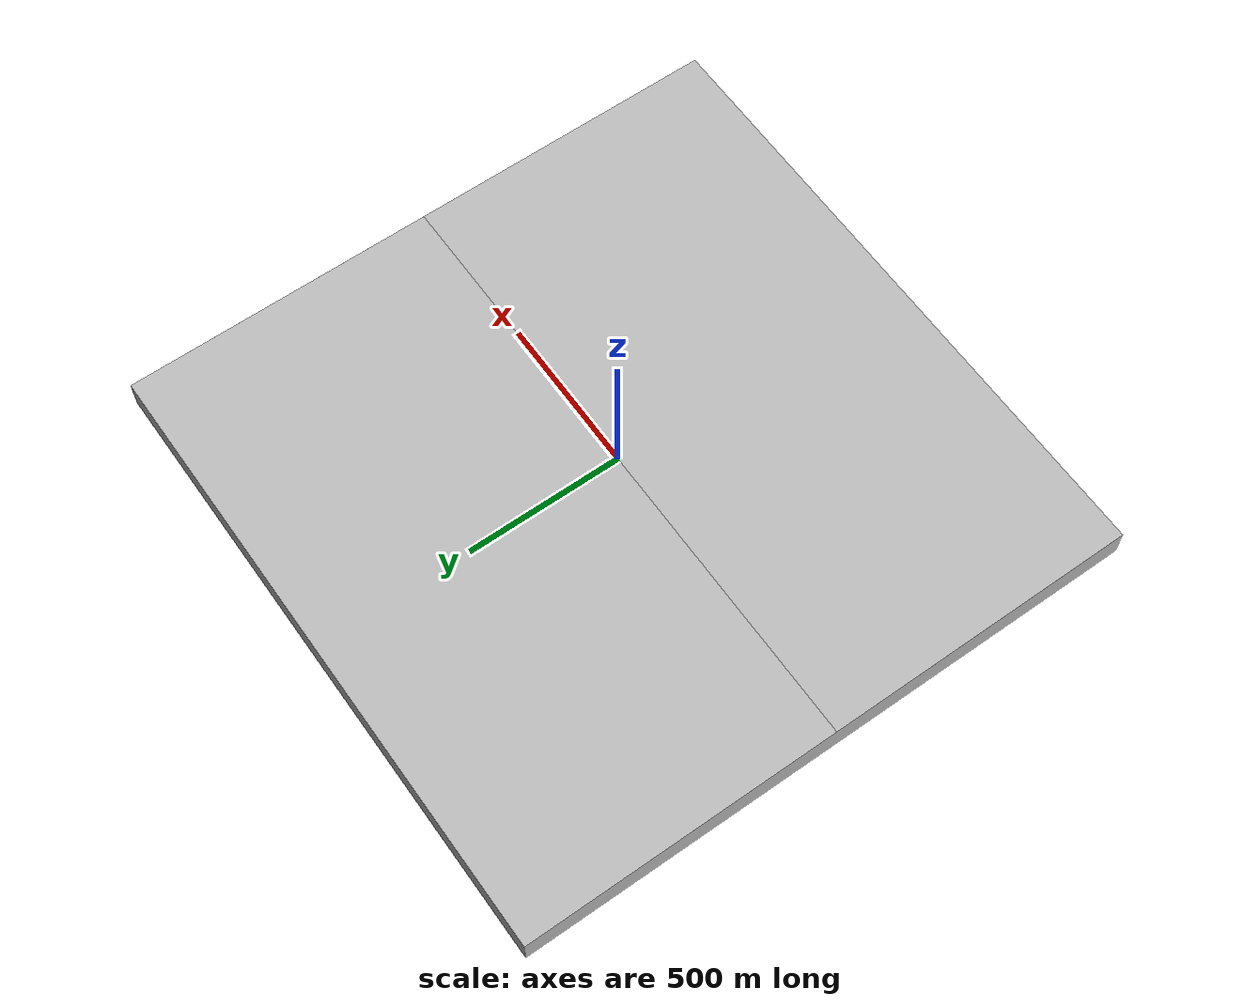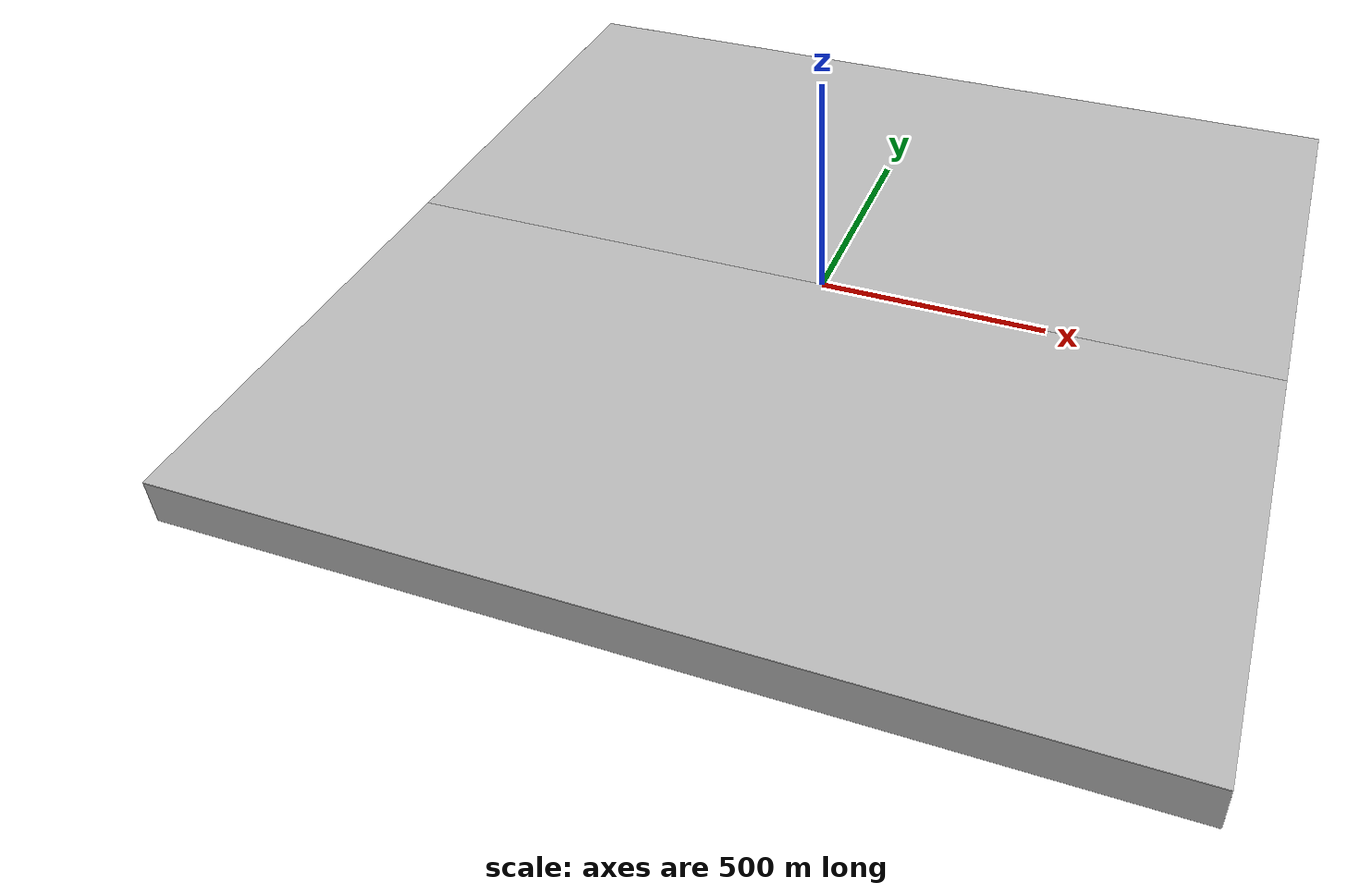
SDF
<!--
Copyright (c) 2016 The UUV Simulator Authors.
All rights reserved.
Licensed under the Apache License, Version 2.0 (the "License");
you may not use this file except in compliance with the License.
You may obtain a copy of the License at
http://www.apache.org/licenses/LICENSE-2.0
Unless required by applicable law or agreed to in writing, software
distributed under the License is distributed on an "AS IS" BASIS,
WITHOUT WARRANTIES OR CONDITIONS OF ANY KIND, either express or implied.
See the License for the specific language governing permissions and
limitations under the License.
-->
<?xml version="1.0" ?>
<sdf version="1.4">
  <world name="oceans_waves">
    <physics name="default_physics" default="true" type="ode">
      <max_step_size>0.002</max_step_size>
      <real_time_factor>1</real_time_factor>
      <real_time_update_rate>500</real_time_update_rate>
    </physics>
    <scene>
      <ambient>0.01 0.01 0.01 1.0</ambient>
      <sky>
        <clouds>
          <speed>12</speed>
        </clouds>
      </sky>
      <shadows>1</shadows>
    </scene>

    <!-- Origin placed somewhere in the middle of the North Sea  -->
    <spherical_coordinates>
      <latitude_deg>56.71897669633431</latitude_deg>
      <longitude_deg>3.515625</longitude_deg>
    </spherical_coordinates>

    <!-- Global light source -->
    <light type="directional" name="sun1">
      <pose>50 0 150 0 0 0</pose>
      <diffuse>1 1 1 1</diffuse>
      <specular>.1 .1 .1 1</specular>
      <direction>0.3 0.3 -1</direction>
      <cast_shadows>false</cast_shadows>
    </light>

    <!-- Global light source -->
    <light type="directional" name="sun_diffuse">
      <pose>-50 0 -150 0 0 0</pose>
      <diffuse>0.6 0.6 0.6 1</diffuse>
      <specular>0 0 0 1</specular>
      <direction>-0.3 -0.3 -1</direction>
      <cast_shadows>false</cast_shadows>
    </light>

    <!-- Virtual NED frame -->
    <include>
      <uri>model://ned_frame</uri>
      <pose>0 0 0 0 0 0</pose>
    </include>

    <!-- Bounding box with sea surface -->
    <include>
      <uri>model://ocean</uri>
      <pose>0 0 0 0 0 0</pose>
    </include>

    <!-- Heightmap -->
    <include>
      <uri>model://sand_heightmap</uri>
      <pose>0 0 -95 0 0 0</pose>
    </include>

    <plugin name="underwater_current_plugin" filename="libuuv_underwater_current_ros_plugin.so">
      <namespace>hydrodynamics</namespace>
      <constant_current>
        <topic>current_velocity</topic>
        <velocity>
          <mean>0</mean>
          <min>0</min>
          <max>5</max>
          <mu>0.0</mu>
          <noiseAmp>0.0</noiseAmp>
        </velocity>

        <horizontal_angle>
          <mean>0</mean>
          <min>-3.141592653589793238</min>
          <max>3.141592653589793238</max>
          <mu>0.0</mu>
          <noiseAmp>0.0</noiseAmp>
        </horizontal_angle>

        <vertical_angle>
          <mean>0</mean>
          <min>-3.141592653589793238</min>
          <max>3.141592653589793238</max>
          <mu>0.0</mu>
          <noiseAmp>0.0</noiseAmp>
        </vertical_angle>
      </constant_current>
    </plugin>

    <plugin name="sc_interface" filename="libuuv_sc_ros_interface_plugin.so"/>

    <gui fullscreen='0'>
      <camera name='user_camera'>
        <pose frame=''>34.6042 32.2383 -20.6633 0 0.528384 1.41245</pose>
        <view_controller>orbit</view_controller>
        <projection_type>perspective</projection_type>
      </camera>
    </gui>
  </world>
</sdf>

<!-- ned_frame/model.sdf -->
<sdf version='1.5'>
    <model name="world_aaa">

      <pose>0 0 0 0 0 0</pose>
      <static>true</static>

      <link name="world_aaa">
        <gravity>0</gravity>
        <pose>0 0 0 3.14159265359 0 1.5707963267948966</pose>

        <visual name="N_visual">
          <pose>0.25 0 0 1.5707963267948966 0 1.5707963267948966</pose>
          <geometry>
            <cylinder>
              <radius>0.01</radius>
              <length>0.5</length>
            </cylinder>
          </geometry>
          <material>
            <script>
              <uri>file://media/materials/scripts/gazebo.material</uri>
              <name>Gazebo/Red</name>
            </script>
          </material>
        </visual>

        <visual name="E_visual">
          <pose>0 0.25 0 1.5707963267948966 0 0</pose>
          <geometry>
            <cylinder>
              <radius>0.01</radius>
              <length>0.5</length>
            </cylinder>
          </geometry>
          <material>
            <script>
              <uri>file://media/materials/scripts/gazebo.material</uri>
              <name>Gazebo/Green</name>
            </script>
          </material>
        </visual>

        <visual name="D_visual">
          <pose>0 0 0.25 0 0 0</pose>
          <geometry>
            <cylinder>
              <radius>0.01</radius>
              <length>0.5</length>
            </cylinder>
          </geometry>
          <material>
            <script>
              <uri>file://media/materials/scripts/gazebo.material</uri>
              <name>Gazebo/Blue</name>
            </script>
          </material>
        </visual>
      </link>
    </model>
</sdf>

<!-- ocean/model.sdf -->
<sdf version="1.4">

<model name="ocean">
  <static>true</static>
  <link name="ocean_link">

  <visual name="ocean_surface">
    <pose>0 0 0 0 0 0</pose>
    <geometry>
      <mesh>
        <uri>file://Media/models/sea_surface_1000m_x_1000m.dae</uri>
        <scale>2 2 2</scale>
      </mesh>
    </geometry>
    <material>
      <script>
        <uri>file://Media/materials/scripts/waves.material</uri>
        <name>UUVSimulator/SimpleWaves</name>
      </script>
    </material>
  </visual>

  <visual name="ocean_below">
    <pose>0 0 0 3.14 0 0</pose>
    <geometry>
      <mesh>
        <uri>file://Media/models/sea_surface_1000m_x_1000m.dae</uri>
        <scale>2 2 2</scale>
      </mesh>
    </geometry>
    <material>
      <script>
        <uri>file://Media/materials/scripts/water.material</uri>
        <name>UUVSimulator/StaticWater</name>
      </script>
    </material>
  </visual>

  <visual name="seafloor">
    <cast_shadows>false</cast_shadows>
    <pose>0 0 -100 0 0 0</pose>
    <geometry>
      <box>
        <size>2000 2000 .1</size>
      </box>
    </geometry>
    <material>
      <script>
        <uri>file://Media/materials/scripts/sand.material</uri>
        <name>UUVSimulator/SandAndStones</name>
      </script>
    </material>
  </visual>

  <collision name="seafloor">
    <pose>0 0 -100 0 0 0</pose>
    <geometry>
      <box>
        <size>2000 2000 .1</size>
      </box>
    </geometry>
  </collision>

  <visual name="north">
    <pose>1000 0 -50 0 -1.5708 0</pose>
    <geometry><plane><normal>0 0 1</normal><size>100 2000</size></plane></geometry>
    <material>
      <script>
        <uri>file://Media/materials/scripts/water.material</uri>
        <name>UUVSimulator/SeaWall</name>
      </script>
    </material>
  </visual>

  <visual name="south">
    <pose>-1000 0 -50 0 1.5708 0</pose>
    <geometry><plane><normal>0 0 1</normal><size>100 2000</size></plane></geometry>
    <material>
      <script>
        <uri>file://Media/materials/scripts/water.material</uri>
        <name>UUVSimulator/SeaWall</name>
      </script>
    </material>
  </visual>

  <visual name="west">
    <pose>0 1000 -50 1.5708 0 0</pose>
    <geometry><plane><normal>0 0 1</normal><size>2000 100</size></plane></geometry>
    <material>
      <script>
        <uri>file://Media/materials/scripts/water.material</uri>
        <name>UUVSimulator/SeaWall</name>
      </script>
    </material>
  </visual>

  <visual name="east">
    <pose>0 -1000 -50 -1.5708 0 0</pose>
    <geometry><plane><normal>0 0 1</normal><size>2000 100</size></plane></geometry>
    <material>
      <script>
        <uri>file://Media/materials/scripts/water.material</uri>
        <name>UUVSimulator/SeaWall</name>
      </script>
    </material>
  </visual>
  </link>
</model>
</sdf>

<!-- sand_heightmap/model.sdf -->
<sdf version="1.5">
  <model name="sand_heightmap">
    <static>true</static>
    <link name="link">
      <collision name="ground">
        <pose>0 0 0 0 0 0</pose>
        <geometry>
          <mesh><uri>model://sand_heightmap/meshes/heightmap.dae</uri></mesh>
        </geometry>
      </collision>

      <visual name="ground_sand">
        <cast_shadows>true</cast_shadows>
        <pose>0 0 0 0 0 0</pose>
        <geometry>
          <mesh><uri>model://sand_heightmap/meshes/heightmap.dae</uri></mesh>
        </geometry>
        <material>
          <script>
            <uri>file://Media/materials/scripts/sand.material</uri>
            <name>UUVSimulator/SandAndStones</name>
          </script>
        </material>
      </visual>
    </link>
  </model>
</sdf>
